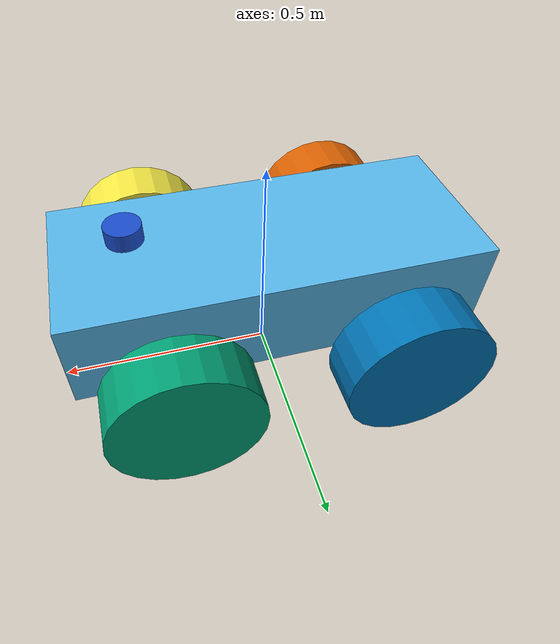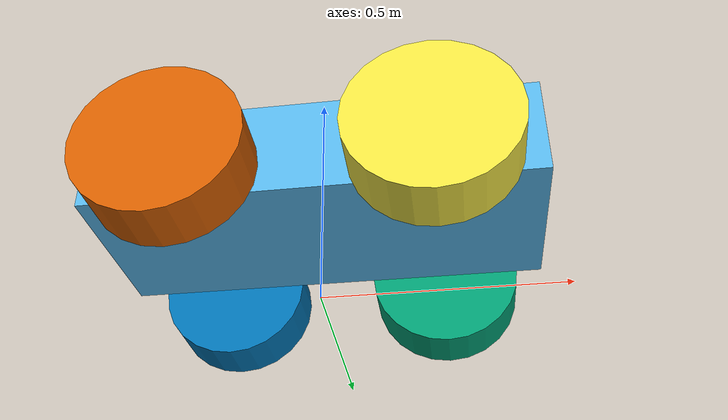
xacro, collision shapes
<?xml version="1.0"?>
<robot name="scout" xmlns:xacro="http://ros.org/wiki/xacro">
    <xacro:arg name="robot_name" default="scout"/>
    <xacro:arg name="robot_namespace" default="$(arg robot_name)"/>
    <!-- Включать ли плагины управления Gazebo (нужны только для симуляции) -->
    <xacro:arg name="use_gazebo" default="false"/>

    <!-- Компоненты -->
    <xacro:include filename="$(find scout_description)/urdf/components/base/base.urdf.xacro" />
    <xacro:include filename="$(find scout_description)/urdf/components/wheels/wheel.urdf.xacro" />
    <xacro:include filename="$(find scout_description)/urdf/components/sensors/lidar.urdf.xacro" />
    <xacro:include filename="$(find scout_description)/urdf/components/plugins/gz_control.urdf.xacro" />
    <xacro:include filename="$(find scout_description)/urdf/components/plugins/control.urdf.xacro" />
    <xacro:include filename="$(find scout_description)/urdf/components/plugins/transmission.urdf.xacro" />

    <!-- Геометрия расположения колёс (официальные значения SCOUT) -->
    <xacro:property name="wheelbase"             value="0.498"/>
    <xacro:property name="track"                 value="0.58306"/>
    <xacro:property name="wheel_vertical_offset" value="-0.0702"/>

    <!-- База -->
    <xacro:base />

    <!-- 4 колеса (дифференциальный привод), ось Y.
         Нумерация: перед/зад, лево/право. reflect=1 — правые (зеркальные). -->
    <xacro:wheel prefix="front_left" parent="base_link" reflect="0">
        <origin xyz="${wheelbase/2} ${track/2} ${wheel_vertical_offset}" rpy="0 0 0"/>
    </xacro:wheel>
    <xacro:wheel prefix="front_right" parent="base_link" reflect="1">
        <origin xyz="${wheelbase/2} ${-track/2} ${wheel_vertical_offset}" rpy="0 0 0"/>
    </xacro:wheel>
    <xacro:wheel prefix="rear_left" parent="base_link" reflect="0">
        <origin xyz="${-wheelbase/2} ${track/2} ${wheel_vertical_offset}" rpy="0 0 0"/>
    </xacro:wheel>
    <xacro:wheel prefix="rear_right" parent="base_link" reflect="1">
        <origin xyz="${-wheelbase/2} ${-track/2} ${wheel_vertical_offset}" rpy="0 0 0"/>
    </xacro:wheel>

    <!-- Дальномер сверху в передней части робота -->
    <xacro:lidar prefix="lidar" parent="base_link" ns="$(arg robot_namespace)">
        <origin xyz="0.30 0.0 0.15" rpy="0.0 0.0 0.0"/>
    </xacro:lidar>

    <!-- ros2_control + плагины управления Gazebo (только для симуляции) -->
    <xacro:if value="$(arg use_gazebo)">
        <xacro:control>
            <transmissions>
                <xacro:transmission joint="front_left_wheel_joint"/>
                <xacro:transmission joint="front_right_wheel_joint"/>
                <xacro:transmission joint="rear_left_wheel_joint"/>
                <xacro:transmission joint="rear_right_wheel_joint"/>
            </transmissions>
        </xacro:control>
        <xacro:gz_control namespace="$(arg robot_namespace)"/>
    </xacro:if>

</robot>

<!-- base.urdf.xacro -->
<robot xmlns:xacro="http://ros.org/wiki/xacro">

    <!-- Габариты шасси SCOUT — официальные значения
         (agilexrobotics/ugv_gazebo_sim, scout_description, лицензия BSD).
         Визуальная модель: meshes/base_link.dae (официальная). -->
    <xacro:property name="base_x_size" value="0.925"/>
    <xacro:property name="base_y_size" value="0.38"/>
    <xacro:property name="base_z_size" value="0.21"/>
    <xacro:property name="base_mass"   value="40.0"/>

    <xacro:property name="wheel_radius"          value="0.16459"/>
    <xacro:property name="wheel_vertical_offset" value="-0.0702"/>
    <!-- Высота base_link над полом: колёса касаются земли
         (wheel_radius - wheel_vertical_offset) -->
    <xacro:property name="base_z" value="${wheel_radius - wheel_vertical_offset}"/>

    <xacro:macro name="base">

        <!-- Корневое соединение (проекция центра робота на пол) -->
        <link name="base_footprint"/>

        <!-- Шасси робота -->
        <link name="base_link">
            <visual>
                <origin xyz="0 0 0" rpy="0 0 0"/>
                <geometry>
                    <mesh filename="file://$(find scout_description)/meshes/base_link.dae"/>
                </geometry>
            </visual>
            <collision>
                <origin xyz="0 0 0.008" rpy="0 0 0"/>
                <geometry>
                    <box size="${base_x_size} ${base_y_size} ${base_z_size}"/>
                </geometry>
            </collision>
            <inertial>
                <origin xyz="0 0 0" rpy="0 0 0"/>
                <mass value="${base_mass}"/>
                <inertia ixx="2.288641" ixy="0" ixz="0"
                         iyy="5.103976" iyz="0"
                         izz="3.431465"/>
            </inertial>
        </link>

        <!-- Жёсткое соединение footprint -> base_link -->
        <joint name="base_link_joint" type="fixed">
            <origin xyz="0 0 ${base_z}" rpy="0 0 0"/>
            <parent link="base_footprint"/>
            <child link="base_link"/>
        </joint>

    </xacro:macro>
</robot>

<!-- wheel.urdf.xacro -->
<robot xmlns:xacro="http://ros.org/wiki/xacro">

    <!-- Параметры колеса SCOUT — официальные значения
         (agilexrobotics/ugv_gazebo_sim, BSD). Визуальная модель:
         meshes/wheel_type1.dae (единая для всех 4 колёс). -->
    <xacro:property name="wheel_radius" value="0.16459"/>
    <xacro:property name="wheel_length" value="0.11653"/>

    <xacro:macro name="wheel" params="prefix parent reflect *origin">

        <joint name="${prefix}_wheel_joint" type="continuous">
            <parent link="${parent}"/>
            <child link="${prefix}_wheel_link"/>
            <axis xyz="0 1 0"/>
            <dynamics damping="0.2"/>
            <xacro:insert_block name="origin"/>
        </joint>

        <link name="${prefix}_wheel_link">
            <visual>
                <origin xyz="0 0 0" rpy="${reflect*pi} 0 0"/>
                <geometry>
                    <mesh filename="file://$(find scout_description)/meshes/wheel_type1.dae"/>
                </geometry>
            </visual>
            <collision>
                <origin xyz="0 0 0" rpy="${pi/2} 0 0"/>
                <geometry>
                    <cylinder radius="${wheel_radius}" length="${wheel_length}"/>
                </geometry>
            </collision>
            <inertial>
                <origin xyz="0 0 0" rpy="0 0 0"/>
                <mass value="3.0"/>
                <inertia ixx="0.7171" ixy="0" ixz="0"
                         iyy="0.1361" iyz="0"
                         izz="0.7171"/>
            </inertial>
        </link>

    </xacro:macro>
</robot>

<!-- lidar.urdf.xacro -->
<robot xmlns:xacro="http://ros.org/wiki/xacro">

  <xacro:include filename="$(find scout_description)/urdf/components/plugins/gz_lidar.urdf.xacro"/>

  <!-- Лидар: визуальная модель из примитивов (цилиндр + основание),
       без внешних mesh-файлов — пакет самодостаточен. -->
  <xacro:macro name="lidar" params="prefix parent ns *origin">

    <joint name="${prefix}_joint" type="fixed">
        <parent link="${parent}"/>
        <child link="${prefix}_link"/>
        <xacro:insert_block name="origin"/>
    </joint>

    <link name="${prefix}_link">
      <visual>
        <origin xyz="0 0 0.02" rpy="0 0 0"/>
        <geometry>
            <cylinder radius="0.04" length="0.04"/>
        </geometry>
        <material name="lidar_blue">
            <color rgba="0.1 0.3 0.8 1.0"/>
        </material>
      </visual>
      <collision>
        <origin xyz="0 0 0.02" rpy="0 0 0"/>
        <geometry>
            <cylinder radius="0.04" length="0.04"/>
        </geometry>
      </collision>
      <inertial>
        <origin xyz="0 0 0" rpy="0 0 0"/>
        <mass value="0.1"/>
        <inertia ixx="0.0001" ixy="0.0" ixz="0.0"
                 iyy="0.0001" iyz="0.0"
                 izz="0.0001"/>
      </inertial>
    </link>

    <!-- Плагин датчика (gpu_lidar) -->
    <xacro:gz_lidar prefix="${prefix}" namespace="${ns}"/>

  </xacro:macro>

</robot>
